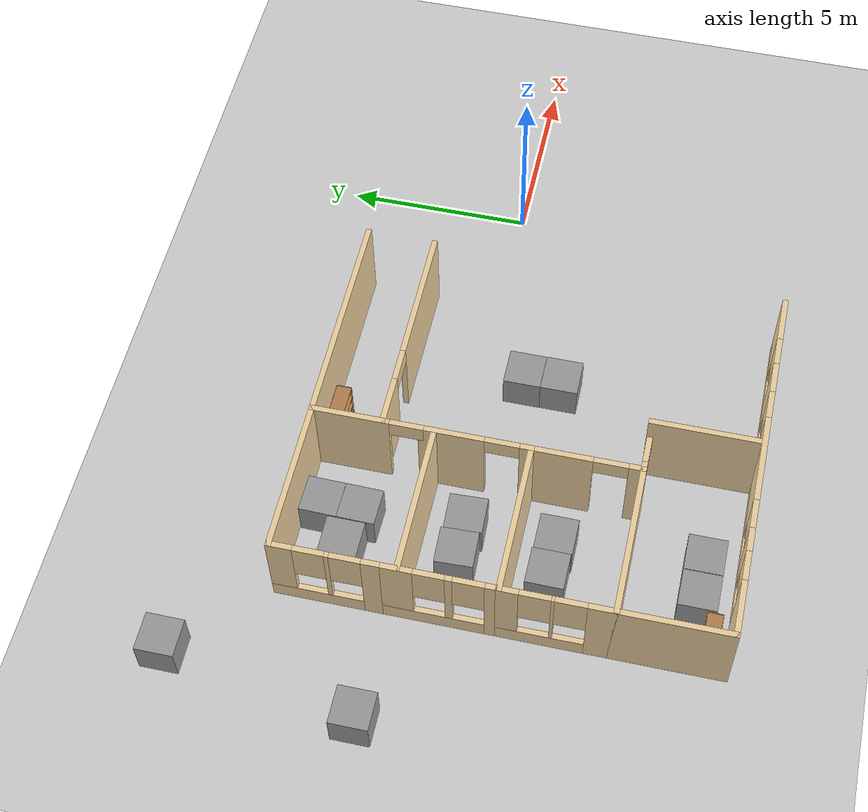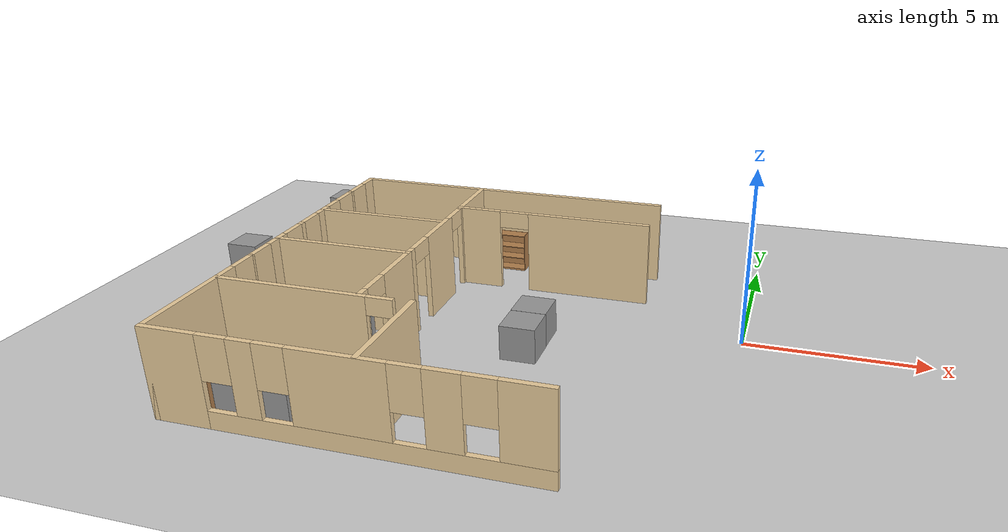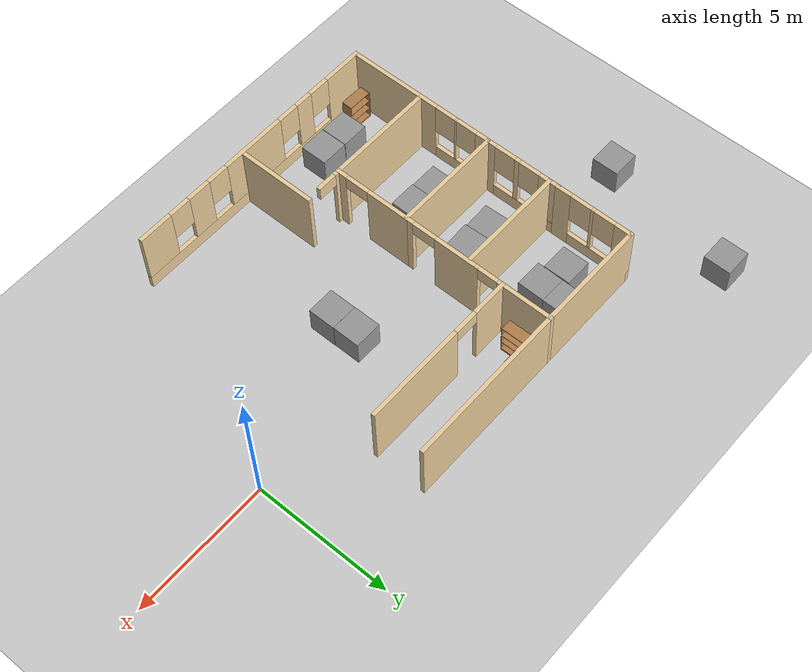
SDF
<sdf version="1.7">
 <world name="default">
  <model name="ground_plane">
   <static>1</static>
   <link name="link">
    <collision name="collision">
     <geometry><plane><normal>0 0 1</normal><size>100 100</size></plane></geometry>
     <surface>
      <contact><collide_bitmask>65535</collide_bitmask></contact>
      <friction><ode><mu>100</mu><mu2>50</mu2></ode></friction>
     </surface>
    </collision>
    <visual name="visual">
     <cast_shadows>0</cast_shadows>
     <geometry><plane><normal>0 0 1</normal><size>100 100</size></plane></geometry>
     <material>
      <script><uri>file://media/materials/scripts/gazebo.material</uri><name>Gazebo/Grey</name></script>
     </material>
    </visual>
   </link>
  </model>
  <model name="Health_2">
   <pose>1.45683 -1.97013 0 0 -0 0</pose>
   <link name="Wall_101">
    <pose>-10.4424 1.425 0 0 -0 -1.5708</pose>
    <visual name="Wall_101_Visual_0">
     <pose>-0.635885 0 1.25 0 -0 0</pose>
     <geometry><box><size>1.72823 0.15 2.5</size></box></geometry>
     <material>
      <script><uri>file://media/materials/scripts/gazebo.material</uri><name>Gazebo/Grey</name></script>
      <ambient>0.921569 0.807843 0.615686 1</ambient>
     </material>
     <meta><layer>0</layer></meta>
    </visual>
    <collision name="Wall_101_Collision_0">
     <geometry><box><size>1.72823 0.15 2.5</size></box></geometry>
     <pose>-0.635885 0 1.25 0 -0 0</pose>
    </collision>
    <visual name="Wall_101_Visual_1">
     <pose>1.31411 0 1.25 0 -0 0</pose>
     <geometry><box><size>0.371769 0.15 2.5</size></box></geometry>
     <material>
      <script><uri>file://media/materials/scripts/gazebo.material</uri><name>Gazebo/Grey</name></script>
      <ambient>0.921569 0.807843 0.615686 1</ambient>
     </material>
     <meta><layer>0</layer></meta>
    </visual>
    <collision name="Wall_101_Collision_1">
     <geometry><box><size>0.371769 0.15 2.5</size></box></geometry>
     <pose>1.31411 0 1.25 0 -0 0</pose>
    </collision>
    <visual name="Wall_101_Visual_2">
     <pose>0.678231 0 2.25 0 -0 0</pose>
     <geometry><box><size>0.9 0.15 0.5</size></box></geometry>
     <material>
      <script><uri>file://media/materials/scripts/gazebo.material</uri><name>Gazebo/Grey</name></script>
      <ambient>0.921569 0.807843 0.615686 1</ambient>
     </material>
     <meta><layer>0</layer></meta>
    </visual>
    <collision name="Wall_101_Collision_2">
     <geometry><box><size>0.9 0.15 0.5</size></box></geometry>
     <pose>0.678231 0 2.25 0 -0 0</pose>
    </collision>
   </link>
   <link name="Wall_103">
    <pose>-14.4424 4.275 0 0 -0 1.5708</pose>
    <visual name="Wall_103_Visual_0">
     <pose>-1.1898 0 1.25 0 -0 0</pose>
     <geometry><box><size>0.620394 0.15 2.5</size></box></geometry>
     <material>
      <script><uri>file://media/materials/scripts/gazebo.material</uri><name>Gazebo/Grey</name></script>
      <ambient>0.921569 0.807843 0.615686 1</ambient>
     </material>
     <meta><layer>0</layer></meta>
    </visual>
    <collision name="Wall_103_Collision_0">
     <geometry><box><size>0.620394 0.15 2.5</size></box></geometry>
     <pose>-1.1898 0 1.25 0 -0 0</pose>
    </collision>
    <visual name="Wall_103_Visual_1">
     <pose>0.310197 0 0.25 0 -0 0</pose>
     <geometry><box><size>2.37961 0.15 0.5</size></box></geometry>
     <material>
      <script><uri>file://media/materials/scripts/gazebo.material</uri><name>Gazebo/Grey</name></script>
      <ambient>0.921569 0.807843 0.615686 1</ambient>
     </material>
     <meta><layer>0</layer></meta>
    </visual>
    <collision name="Wall_103_Collision_1">
     <geometry><box><size>2.37961 0.15 0.5</size></box></geometry>
     <pose>0.310197 0 0.25 0 -0 0</pose>
    </collision>
    <visual name="Wall_103_Visual_2">
     <pose>-0.022282 0 1.5 0 -0 0</pose>
     <geometry><box><size>0.114648 0.15 2</size></box></geometry>
     <material>
      <script><uri>file://media/materials/scripts/gazebo.material</uri><name>Gazebo/Grey</name></script>
      <ambient>0.921569 0.807843 0.615686 1</ambient>
     </material>
     <meta><layer>0</layer></meta>
    </visual>
    <collision name="Wall_103_Collision_2">
     <geometry><box><size>0.114648 0.15 2</size></box></geometry>
     <pose>-0.022282 0 1.5 0 -0 0</pose>
    </collision>
    <visual name="Wall_103_Visual_3">
     <pose>1.16752 0 1.5 0 -0 0</pose>
     <geometry><box><size>0.664958 0.15 2</size></box></geometry>
     <material>
      <script><uri>file://media/materials/scripts/gazebo.material</uri><name>Gazebo/Grey</name></script>
      <ambient>0.921569 0.807843 0.615686 1</ambient>
     </material>
     <meta><layer>0</layer></meta>
    </visual>
    <collision name="Wall_103_Collision_3">
     <geometry><box><size>0.664958 0.15 2</size></box></geometry>
     <pose>1.16752 0 1.5 0 -0 0</pose>
    </collision>
    <visual name="Wall_103_Visual_4">
     <pose>-0.479606 0 1.9 0 -0 0</pose>
     <geometry><box><size>0.8 0.15 1.2</size></box></geometry>
     <material>
      <script><uri>file://media/materials/scripts/gazebo.material</uri><name>Gazebo/Grey</name></script>
      <ambient>0.921569 0.807843 0.615686 1</ambient>
     </material>
     <meta><layer>0</layer></meta>
    </visual>
    <collision name="Wall_103_Collision_4">
     <geometry><box><size>0.8 0.15 1.2</size></box></geometry>
     <pose>-0.479606 0 1.9 0 -0 0</pose>
    </collision>
    <visual name="Wall_103_Visual_5">
     <pose>0.435042 0 1.9 0 -0 0</pose>
     <geometry><box><size>0.8 0.15 1.2</size></box></geometry>
     <material>
      <script><uri>file://media/materials/scripts/gazebo.material</uri><name>Gazebo/Grey</name></script>
      <ambient>0.921569 0.807843 0.615686 1</ambient>
     </material>
     <meta><layer>0</layer></meta>
    </visual>
    <collision name="Wall_103_Collision_5">
     <geometry><box><size>0.8 0.15 1.2</size></box></geometry>
     <pose>0.435042 0 1.9 0 -0 0</pose>
    </collision>
   </link>
   <link name="Wall_104">
    <collision name="Wall_104_Collision">
     <geometry><box><size>4.15 0.15 2.5</size></box></geometry>
     <pose>0 0 1.25 0 -0 0</pose>
    </collision>
    <visual name="Wall_104_Visual">
     <pose>0 0 1.25 0 -0 0</pose>
     <geometry><box><size>4.15 0.15 2.5</size></box></geometry>
     <material>
      <script><uri>file://media/materials/scripts/gazebo.material</uri><name>Gazebo/Grey</name></script>
      <ambient>0.921569 0.807843 0.615686 1</ambient>
     </material>
     <meta><layer>0</layer></meta>
    </visual>
    <pose>-12.4424 5.7 0 0 -0 0</pose>
   </link>
   <link name="Wall_105">
    <pose>-10.4424 4.275 0 0 -0 -1.5708</pose>
    <visual name="Wall_105_Visual_0">
     <pose>-0.448372 0 1.25 0 -0 0</pose>
     <geometry><box><size>2.10326 0.15 2.5</size></box></geometry>
     <material>
      <script><uri>file://media/materials/scripts/gazebo.material</uri><name>Gazebo/Grey</name></script>
      <ambient>0.921569 0.807843 0.615686 1</ambient>
     </material>
     <meta><layer>0</layer></meta>
    </visual>
    <collision name="Wall_105_Collision_0">
     <geometry><box><size>2.10326 0.15 2.5</size></box></geometry>
     <pose>-0.448372 0 1.25 0 -0 0</pose>
    </collision>
    <visual name="Wall_105_Visual_1">
     <pose>1.05163 0 2.25 0 -0 0</pose>
     <geometry><box><size>0.896744 0.15 0.5</size></box></geometry>
     <material>
      <script><uri>file://media/materials/scripts/gazebo.material</uri><name>Gazebo/Grey</name></script>
      <ambient>0.921569 0.807843 0.615686 1</ambient>
     </material>
     <meta><layer>0</layer></meta>
    </visual>
    <collision name="Wall_105_Collision_1">
     <geometry><box><size>0.896744 0.15 0.5</size></box></geometry>
     <pose>1.05163 0 2.25 0 -0 0</pose>
    </collision>
   </link>
   <link name="Wall_107">
    <collision name="Wall_107_Collision">
     <geometry><box><size>6 0.15 2.5</size></box></geometry>
     <pose>0 0 1.25 0 -0 0</pose>
    </collision>
    <visual name="Wall_107_Visual">
     <pose>0 0 1.25 0 -0 0</pose>
     <geometry><box><size>6 0.15 2.5</size></box></geometry>
     <material>
      <script><uri>file://media/materials/scripts/gazebo.material</uri><name>Gazebo/Grey</name></script>
      <ambient>0.921569 0.807843 0.615686 1</ambient>
     </material>
     <meta><layer>0</layer></meta>
    </visual>
    <pose>-7.51736 5.7 0 0 -0 0</pose>
   </link>
   <link name="Wall_114">
    <pose>-10.4424 -1.425 0 0 -0 -1.5708</pose>
    <visual name="Wall_114_Visual_0">
     <pose>-0.673048 0 1.25 0 -0 0</pose>
     <geometry><box><size>1.6539 0.15 2.5</size></box></geometry>
     <material>
      <script><uri>file://media/materials/scripts/gazebo.material</uri><name>Gazebo/Grey</name></script>
      <ambient>0.921569 0.807843 0.615686 1</ambient>
     </material>
     <meta><layer>0</layer></meta>
    </visual>
    <collision name="Wall_114_Collision_0">
     <geometry><box><size>1.6539 0.15 2.5</size></box></geometry>
     <pose>-0.673048 0 1.25 0 -0 0</pose>
    </collision>
    <visual name="Wall_114_Visual_1">
     <pose>1.27695 0 1.25 0 -0 0</pose>
     <geometry><box><size>0.446096 0.15 2.5</size></box></geometry>
     <material>
      <script><uri>file://media/materials/scripts/gazebo.material</uri><name>Gazebo/Grey</name></script>
      <ambient>0.921569 0.807843 0.615686 1</ambient>
     </material>
     <meta><layer>0</layer></meta>
    </visual>
    <collision name="Wall_114_Collision_1">
     <geometry><box><size>0.446096 0.15 2.5</size></box></geometry>
     <pose>1.27695 0 1.25 0 -0 0</pose>
    </collision>
    <visual name="Wall_114_Visual_2">
     <pose>0.603904 0 2.25 0 -0 0</pose>
     <geometry><box><size>0.9 0.15 0.5</size></box></geometry>
     <material>
      <script><uri>file://media/materials/scripts/gazebo.material</uri><name>Gazebo/Grey</name></script>
      <ambient>0.921569 0.807843 0.615686 1</ambient>
     </material>
     <meta><layer>0</layer></meta>
    </visual>
    <collision name="Wall_114_Collision_2">
     <geometry><box><size>0.9 0.15 0.5</size></box></geometry>
     <pose>0.603904 0 2.25 0 -0 0</pose>
    </collision>
   </link>
   <link name="Wall_123">
    <pose>-7.51736 3.85 0 0 -0 3.14159</pose>
    <visual name="Wall_123_Visual_0">
     <pose>-1.14066 0 1.25 0 -0 0</pose>
     <geometry><box><size>3.71867 0.15 2.5</size></box></geometry>
     <material>
      <script><uri>file://media/materials/scripts/gazebo.material</uri><name>Gazebo/Grey</name></script>
      <ambient>0.921569 0.807843 0.615686 1</ambient>
     </material>
     <meta><layer>0</layer></meta>
    </visual>
    <collision name="Wall_123_Collision_0">
     <geometry><box><size>3.71867 0.15 2.5</size></box></geometry>
     <pose>-1.14066 0 1.25 0 -0 0</pose>
    </collision>
    <visual name="Wall_123_Visual_1">
     <pose>2.30934 0 1.25 0 -0 0</pose>
     <geometry><box><size>1.38133 0.15 2.5</size></box></geometry>
     <material>
      <script><uri>file://media/materials/scripts/gazebo.material</uri><name>Gazebo/Grey</name></script>
      <ambient>0.921569 0.807843 0.615686 1</ambient>
     </material>
     <meta><layer>0</layer></meta>
    </visual>
    <collision name="Wall_123_Collision_1">
     <geometry><box><size>1.38133 0.15 2.5</size></box></geometry>
     <pose>2.30934 0 1.25 0 -0 0</pose>
    </collision>
    <visual name="Wall_123_Visual_2">
     <pose>1.16867 0 2.25 0 -0 0</pose>
     <geometry><box><size>0.9 0.15 0.5</size></box></geometry>
     <material>
      <script><uri>file://media/materials/scripts/gazebo.material</uri><name>Gazebo/Grey</name></script>
      <ambient>0.921569 0.807843 0.615686 1</ambient>
     </material>
     <meta><layer>0</layer></meta>
    </visual>
    <collision name="Wall_123_Collision_2">
     <geometry><box><size>0.9 0.15 0.5</size></box></geometry>
     <pose>1.16867 0 2.25 0 -0 0</pose>
    </collision>
   </link>
   <link name="Wall_133">
    <collision name="Wall_133_Collision">
     <geometry><box><size>3 0.15 2.5</size></box></geometry>
     <pose>0 0 1.25 0 -0 0</pose>
    </collision>
    <visual name="Wall_133_Visual">
     <pose>0 0 1.25 0 -0 0</pose>
     <geometry><box><size>3 0.15 2.5</size></box></geometry>
     <material>
      <script><uri>file://media/materials/scripts/gazebo.material</uri><name>Gazebo/Grey</name></script>
      <ambient>0.921569 0.807843 0.615686 1</ambient>
     </material>
     <meta><layer>0</layer></meta>
    </visual>
    <pose>-14.4424 -4.275 0 0 -0 -1.5708</pose>
   </link>
   <link name="Wall_134">
    <pose>-9.5058 -5.7 0 0 -0 0</pose>
    <visual name="Wall_134_Visual_0">
     <pose>-4.24101 0 1.25 0 -0 0</pose>
     <geometry><box><size>1.54111 0.15 2.5</size></box></geometry>
     <material>
      <script><uri>file://media/materials/scripts/gazebo.material</uri><name>Gazebo/Grey</name></script>
      <ambient>0.921569 0.807843 0.615686 1</ambient>
     </material>
     <meta><layer>0</layer></meta>
    </visual>
    <collision name="Wall_134_Collision_0">
     <geometry><box><size>1.54111 0.15 2.5</size></box></geometry>
     <pose>-4.24101 0 1.25 0 -0 0</pose>
    </collision>
    <visual name="Wall_134_Visual_1">
     <pose>0.770556 0 0.25 0 -0 0</pose>
     <geometry><box><size>8.48202 0.15 0.5</size></box></geometry>
     <material>
      <script><uri>file://media/materials/scripts/gazebo.material</uri><name>Gazebo/Grey</name></script>
      <ambient>0.921569 0.807843 0.615686 1</ambient>
     </material>
     <meta><layer>0</layer></meta>
    </visual>
    <collision name="Wall_134_Collision_1">
     <geometry><box><size>8.48202 0.15 0.5</size></box></geometry>
     <pose>0.770556 0 0.25 0 -0 0</pose>
    </collision>
    <visual name="Wall_134_Visual_2">
     <pose>-2.34288 0 1.5 0 -0 0</pose>
     <geometry><box><size>0.655137 0.15 2</size></box></geometry>
     <material>
      <script><uri>file://media/materials/scripts/gazebo.material</uri><name>Gazebo/Grey</name></script>
      <ambient>0.921569 0.807843 0.615686 1</ambient>
     </material>
     <meta><layer>0</layer></meta>
    </visual>
    <collision name="Wall_134_Collision_2">
     <geometry><box><size>0.655137 0.15 2</size></box></geometry>
     <pose>-2.34288 0 1.5 0 -0 0</pose>
    </collision>
    <visual name="Wall_134_Visual_3">
     <pose>0.011093 0 1.5 0 -0 0</pose>
     <geometry><box><size>2.45282 0.15 2</size></box></geometry>
     <material>
      <script><uri>file://media/materials/scripts/gazebo.material</uri><name>Gazebo/Grey</name></script>
      <ambient>0.921569 0.807843 0.615686 1</ambient>
     </material>
     <meta><layer>0</layer></meta>
    </visual>
    <collision name="Wall_134_Collision_3">
     <geometry><box><size>2.45282 0.15 2</size></box></geometry>
     <pose>0.011093 0 1.5 0 -0 0</pose>
    </collision>
    <visual name="Wall_134_Visual_4">
     <pose>2.48179 0 1.5 0 -0 0</pose>
     <geometry><box><size>0.888581 0.15 2</size></box></geometry>
     <material>
      <script><uri>file://media/materials/scripts/gazebo.material</uri><name>Gazebo/Grey</name></script>
      <ambient>0.921569 0.807843 0.615686 1</ambient>
     </material>
     <meta><layer>0</layer></meta>
    </visual>
    <collision name="Wall_134_Collision_4">
     <geometry><box><size>0.888581 0.15 2</size></box></geometry>
     <pose>2.48179 0 1.5 0 -0 0</pose>
    </collision>
    <visual name="Wall_134_Visual_5">
     <pose>4.36882 0 1.5 0 -0 0</pose>
     <geometry><box><size>1.28548 0.15 2</size></box></geometry>
     <material>
      <script><uri>file://media/materials/scripts/gazebo.material</uri><name>Gazebo/Grey</name></script>
      <ambient>0.921569 0.807843 0.615686 1</ambient>
     </material>
     <meta><layer>0</layer></meta>
    </visual>
    <collision name="Wall_134_Collision_5">
     <geometry><box><size>1.28548 0.15 2</size></box></geometry>
     <pose>4.36882 0 1.5 0 -0 0</pose>
    </collision>
    <visual name="Wall_134_Visual_6">
     <pose>-3.07045 0 1.9 0 -0 0</pose>
     <geometry><box><size>0.8 0.15 1.2</size></box></geometry>
     <material>
      <script><uri>file://media/materials/scripts/gazebo.material</uri><name>Gazebo/Grey</name></script>
      <ambient>0.921569 0.807843 0.615686 1</ambient>
     </material>
     <meta><layer>0</layer></meta>
    </visual>
    <collision name="Wall_134_Collision_6">
     <geometry><box><size>0.8 0.15 1.2</size></box></geometry>
     <pose>-3.07045 0 1.9 0 -0 0</pose>
    </collision>
    <visual name="Wall_134_Visual_7">
     <pose>-1.61532 0 1.9 0 -0 0</pose>
     <geometry><box><size>0.8 0.15 1.2</size></box></geometry>
     <material>
      <script><uri>file://media/materials/scripts/gazebo.material</uri><name>Gazebo/Grey</name></script>
      <ambient>0.921569 0.807843 0.615686 1</ambient>
     </material>
     <meta><layer>0</layer></meta>
    </visual>
    <collision name="Wall_134_Collision_7">
     <geometry><box><size>0.8 0.15 1.2</size></box></geometry>
     <pose>-1.61532 0 1.9 0 -0 0</pose>
    </collision>
    <visual name="Wall_134_Visual_8">
     <pose>1.6375 0 1.9 0 -0 0</pose>
     <geometry><box><size>0.8 0.15 1.2</size></box></geometry>
     <material>
      <script><uri>file://media/materials/scripts/gazebo.material</uri><name>Gazebo/Grey</name></script>
      <ambient>0.921569 0.807843 0.615686 1</ambient>
     </material>
     <meta><layer>0</layer></meta>
    </visual>
    <collision name="Wall_134_Collision_8">
     <geometry><box><size>0.8 0.15 1.2</size></box></geometry>
     <pose>1.6375 0 1.9 0 -0 0</pose>
    </collision>
    <visual name="Wall_134_Visual_9">
     <pose>3.32608 0 1.9 0 -0 0</pose>
     <geometry><box><size>0.8 0.15 1.2</size></box></geometry>
     <material>
      <script><uri>file://media/materials/scripts/gazebo.material</uri><name>Gazebo/Grey</name></script>
      <ambient>0.921569 0.807843 0.615686 1</ambient>
     </material>
     <meta><layer>0</layer></meta>
    </visual>
    <collision name="Wall_134_Collision_9">
     <geometry><box><size>0.8 0.15 1.2</size></box></geometry>
     <pose>3.32608 0 1.9 0 -0 0</pose>
    </collision>
   </link>
   <link name="Wall_226">
    <collision name="Wall_226_Collision">
     <geometry><box><size>4 0.15 2.5</size></box></geometry>
     <pose>0 0 1.25 0 -0 0</pose>
    </collision>
    <visual name="Wall_226_Visual">
     <pose>0 0 1.25 0 -0 0</pose>
     <geometry><box><size>4 0.15 2.5</size></box></geometry>
     <material>
      <script><uri>file://media/materials/scripts/gazebo.material</uri><name>Gazebo/Grey</name></script>
      <ambient>0.921569 0.807843 0.615686 1</ambient>
     </material>
     <meta><layer>0</layer></meta>
    </visual>
    <pose>-12.4974 2.50469 0 0 -0 0</pose>
   </link>
   <link name="Wall_228">
    <collision name="Wall_228_Collision">
     <geometry><box><size>3 0.15 2.5</size></box></geometry>
     <pose>0 0 1.25 0 -0 0</pose>
    </collision>
    <visual name="Wall_228_Visual">
     <pose>0 0 1.25 0 -0 0</pose>
     <geometry><box><size>3 0.15 2.5</size></box></geometry>
     <material>
      <script><uri>file://media/materials/scripts/gazebo.material</uri><name>Gazebo/Grey</name></script>
      <ambient>0.921569 0.807843 0.615686 1</ambient>
     </material>
     <meta><layer>0</layer></meta>
    </visual>
    <pose>-9.01472 -4.24424 0 0 -0 -1.5708</pose>
   </link>
   <link name="Wall_28">
    <pose>-11.9942 -2.85 0 0 -0 0</pose>
    <visual name="Wall_28_Visual_0">
     <pose>-0.366901 0 1.25 0 -0 0</pose>
     <geometry><box><size>4.2662 0.15 2.5</size></box></geometry>
     <material>
      <script><uri>file://media/materials/scripts/gazebo.material</uri><name>Gazebo/Grey</name></script>
      <ambient>0.921569 0.807843 0.615686 1</ambient>
     </material>
     <meta><layer>0</layer></meta>
    </visual>
    <collision name="Wall_28_Collision_0">
     <geometry><box><size>4.2662 0.15 2.5</size></box></geometry>
     <pose>-0.366901 0 1.25 0 -0 0</pose>
    </collision>
    <visual name="Wall_28_Visual_1">
     <pose>2.1331 0 2.25 0 -0 0</pose>
     <geometry><box><size>0.733801 0.15 0.5</size></box></geometry>
     <material>
      <script><uri>file://media/materials/scripts/gazebo.material</uri><name>Gazebo/Grey</name></script>
      <ambient>0.921569 0.807843 0.615686 1</ambient>
     </material>
     <meta><layer>0</layer></meta>
    </visual>
    <collision name="Wall_28_Collision_1">
     <geometry><box><size>0.733801 0.15 0.5</size></box></geometry>
     <pose>2.1331 0 2.25 0 -0 0</pose>
    </collision>
   </link>
   <link name="Wall_48">
    <pose>-14.4424 -1.425 0 0 -0 1.5708</pose>
    <visual name="Wall_48_Visual_0">
     <pose>-1.11892 0 1.25 0 -0 0</pose>
     <geometry><box><size>0.76215 0.15 2.5</size></box></geometry>
     <material>
      <script><uri>file://media/materials/scripts/gazebo.material</uri><name>Gazebo/Grey</name></script>
      <ambient>0.921569 0.807843 0.615686 1</ambient>
     </material>
     <meta><layer>0</layer></meta>
    </visual>
    <collision name="Wall_48_Collision_0">
     <geometry><box><size>0.76215 0.15 2.5</size></box></geometry>
     <pose>-1.11892 0 1.25 0 -0 0</pose>
    </collision>
    <visual name="Wall_48_Visual_1">
     <pose>0.381075 0 0.25 0 -0 0</pose>
     <geometry><box><size>2.23785 0.15 0.5</size></box></geometry>
     <material>
      <script><uri>file://media/materials/scripts/gazebo.material</uri><name>Gazebo/Grey</name></script>
      <ambient>0.921569 0.807843 0.615686 1</ambient>
     </material>
     <meta><layer>0</layer></meta>
    </visual>
    <collision name="Wall_48_Collision_1">
     <geometry><box><size>2.23785 0.15 0.5</size></box></geometry>
     <pose>0.381075 0 0.25 0 -0 0</pose>
    </collision>
    <visual name="Wall_48_Visual_2">
     <pose>0.101884 0 1.5 0 -0 0</pose>
     <geometry><box><size>0.079469 0.15 2</size></box></geometry>
     <material>
      <script><uri>file://media/materials/scripts/gazebo.material</uri><name>Gazebo/Grey</name></script>
      <ambient>0.921569 0.807843 0.615686 1</ambient>
     </material>
     <meta><layer>0</layer></meta>
    </visual>
    <collision name="Wall_48_Collision_2">
     <geometry><box><size>0.079469 0.15 2</size></box></geometry>
     <pose>0.101884 0 1.5 0 -0 0</pose>
    </collision>
    <visual name="Wall_48_Visual_3">
     <pose>1.22081 0 1.5 0 -0 0</pose>
     <geometry><box><size>0.558381 0.15 2</size></box></geometry>
     <material>
      <script><uri>file://media/materials/scripts/gazebo.material</uri><name>Gazebo/Grey</name></script>
      <ambient>0.921569 0.807843 0.615686 1</ambient>
     </material>
     <meta><layer>0</layer></meta>
    </visual>
    <collision name="Wall_48_Collision_3">
     <geometry><box><size>0.558381 0.15 2</size></box></geometry>
     <pose>1.22081 0 1.5 0 -0 0</pose>
    </collision>
    <visual name="Wall_48_Visual_4">
     <pose>-0.33785 0 1.9 0 -0 0</pose>
     <geometry><box><size>0.8 0.15 1.2</size></box></geometry>
     <material>
      <script><uri>file://media/materials/scripts/gazebo.material</uri><name>Gazebo/Grey</name></script>
      <ambient>0.921569 0.807843 0.615686 1</ambient>
     </material>
     <meta><layer>0</layer></meta>
    </visual>
    <collision name="Wall_48_Collision_4">
     <geometry><box><size>0.8 0.15 1.2</size></box></geometry>
     <pose>-0.33785 0 1.9 0 -0 0</pose>
    </collision>
    <visual name="Wall_48_Visual_5">
     <pose>0.541619 0 1.9 0 -0 0</pose>
     <geometry><box><size>0.8 0.15 1.2</size></box></geometry>
     <material>
      <script><uri>file://media/materials/scripts/gazebo.material</uri><name>Gazebo/Grey</name></script>
      <ambient>0.921569 0.807843 0.615686 1</ambient>
     </material>
     <meta><layer>0</layer></meta>
    </visual>
    <collision name="Wall_48_Collision_5">
     <geometry><box><size>0.8 0.15 1.2</size></box></geometry>
     <pose>0.541619 0 1.9 0 -0 0</pose>
    </collision>
   </link>
   <link name="Wall_94">
    <collision name="Wall_94_Collision">
     <geometry><box><size>4.15 0.15 2.5</size></box></geometry>
     <pose>0 0 1.25 0 -0 0</pose>
    </collision>
    <visual name="Wall_94_Visual">
     <pose>0 0 1.25 0 -0 0</pose>
     <geometry><box><size>4.15 0.15 2.5</size></box></geometry>
     <material>
      <script><uri>file://media/materials/scripts/gazebo.material</uri><name>Gazebo/Grey</name></script>
      <ambient>0.921569 0.807843 0.615686 1</ambient>
     </material>
     <meta><layer>0</layer></meta>
    </visual>
    <pose>-12.4424 -0 0 0 -0 0</pose>
   </link>
   <link name="Wall_99">
    <pose>-14.4424 1.425 0 0 -0 1.5708</pose>
    <visual name="Wall_99_Visual_0">
     <pose>-1.29508 0 1.25 0 -0 0</pose>
     <geometry><box><size>0.409842 0.15 2.5</size></box></geometry>
     <material>
      <script><uri>file://media/materials/scripts/gazebo.material</uri><name>Gazebo/Grey</name></script>
      <ambient>0.921569 0.807843 0.615686 1</ambient>
     </material>
     <meta><layer>0</layer></meta>
    </visual>
    <collision name="Wall_99_Collision_0">
     <geometry><box><size>0.409842 0.15 2.5</size></box></geometry>
     <pose>-1.29508 0 1.25 0 -0 0</pose>
    </collision>
    <visual name="Wall_99_Visual_1">
     <pose>0.204921 0 0.25 0 -0 0</pose>
     <geometry><box><size>2.59016 0.15 0.5</size></box></geometry>
     <material>
      <script><uri>file://media/materials/scripts/gazebo.material</uri><name>Gazebo/Grey</name></script>
      <ambient>0.921569 0.807843 0.615686 1</ambient>
     </material>
     <meta><layer>0</layer></meta>
    </visual>
    <collision name="Wall_99_Collision_1">
     <geometry><box><size>2.59016 0.15 0.5</size></box></geometry>
     <pose>0.204921 0 0.25 0 -0 0</pose>
    </collision>
    <visual name="Wall_99_Visual_2">
     <pose>-0.197655 0 1.5 0 -0 0</pose>
     <geometry><box><size>0.185005 0.15 2</size></box></geometry>
     <material>
      <script><uri>file://media/materials/scripts/gazebo.material</uri><name>Gazebo/Grey</name></script>
      <ambient>0.921569 0.807843 0.615686 1</ambient>
     </material>
     <meta><layer>0</layer></meta>
    </visual>
    <collision name="Wall_99_Collision_2">
     <geometry><box><size>0.185005 0.15 2</size></box></geometry>
     <pose>-0.197655 0 1.5 0 -0 0</pose>
    </collision>
    <visual name="Wall_99_Visual_3">
     <pose>1.09742 0 1.5 0 -0 0</pose>
     <geometry><box><size>0.805153 0.15 2</size></box></geometry>
     <material>
      <script><uri>file://media/materials/scripts/gazebo.material</uri><name>Gazebo/Grey</name></script>
      <ambient>0.921569 0.807843 0.615686 1</ambient>
     </material>
     <meta><layer>0</layer></meta>
    </visual>
    <collision name="Wall_99_Collision_3">
     <geometry><box><size>0.805153 0.15 2</size></box></geometry>
     <pose>1.09742 0 1.5 0 -0 0</pose>
    </collision>
    <visual name="Wall_99_Visual_4">
     <pose>-0.690158 0 1.9 0 -0 0</pose>
     <geometry><box><size>0.8 0.15 1.2</size></box></geometry>
     <material>
      <script><uri>file://media/materials/scripts/gazebo.material</uri><name>Gazebo/Grey</name></script>
      <ambient>0.921569 0.807843 0.615686 1</ambient>
     </material>
     <meta><layer>0</layer></meta>
    </visual>
    <collision name="Wall_99_Collision_4">
     <geometry><box><size>0.8 0.15 1.2</size></box></geometry>
     <pose>-0.690158 0 1.9 0 -0 0</pose>
    </collision>
    <visual name="Wall_99_Visual_5">
     <pose>0.294847 0 1.9 0 -0 0</pose>
     <geometry><box><size>0.8 0.15 1.2</size></box></geometry>
     <material>
      <script><uri>file://media/materials/scripts/gazebo.material</uri><name>Gazebo/Grey</name></script>
      <ambient>0.921569 0.807843 0.615686 1</ambient>
     </material>
     <meta><layer>0</layer></meta>
    </visual>
    <collision name="Wall_99_Collision_5">
     <geometry><box><size>0.8 0.15 1.2</size></box></geometry>
     <pose>0.294847 0 1.9 0 -0 0</pose>
    </collision>
   </link>
   <static>1</static>
  </model>
  <model name="bookshelf_1">
   <static>1</static>
   <link name="link">
    <inertial><mass>1</mass></inertial>
    <collision name="back">
     <pose>0 0.005 0.6 0 -0 0</pose>
     <geometry><box><size>0.9 0.01 1.2</size></box></geometry>
    </collision>
    <visual name="visual1">
     <pose>0 0.005 0.6 0 -0 0</pose>
     <geometry><box><size>0.9 0.01 1.2</size></box></geometry>
     <material>
      <script><uri>file://media/materials/scripts/gazebo.material</uri><name>Gazebo/Wood</name></script>
     </material>
    </visual>
    <collision name="left_side">
     <pose>0.45 -0.195 0.6 0 -0 0</pose>
     <geometry><box><size>0.02 0.4 1.2</size></box></geometry>
    </collision>
    <visual name="visual2">
     <pose>0.45 -0.195 0.6 0 -0 0</pose>
     <geometry><box><size>0.02 0.4 1.2</size></box></geometry>
     <material>
      <script><uri>file://media/materials/scripts/gazebo.material</uri><name>Gazebo/Wood</name></script>
     </material>
    </visual>
    <collision name="right_side">
     <pose>-0.45 -0.195 0.6 0 -0 0</pose>
     <geometry><box><size>0.02 0.4 1.2</size></box></geometry>
    </collision>
    <visual name="visual3">
     <pose>-0.45 -0.195 0.6 0 -0 0</pose>
     <geometry><box><size>0.02 0.4 1.2</size></box></geometry>
     <material>
      <script><uri>file://media/materials/scripts/gazebo.material</uri><name>Gazebo/Wood</name></script>
     </material>
    </visual>
    <collision name="bottom">
     <pose>0 -0.195 0.03 0 -0 0</pose>
     <geometry><box><size>0.88 0.4 0.06</size></box></geometry>
    </collision>
    <visual name="visual4">
     <pose>0 -0.195 0.03 0 -0 0</pose>
     <geometry><box><size>0.88 0.4 0.06</size></box></geometry>
     <material>
      <script><uri>file://media/materials/scripts/gazebo.material</uri><name>Gazebo/Wood</name></script>
     </material>
    </visual>
    <collision name="top">
     <pose>0 -0.195 1.19 0 -0 0</pose>
     <geometry><box><size>0.88 0.4 0.02</size></box></geometry>
    </collision>
    <visual name="visual5">
     <pose>0 -0.195 1.19 0 -0 0</pose>
     <geometry><box><size>0.88 0.4 0.02</size></box></geometry>
     <material>
      <script><uri>file://media/materials/scripts/gazebo.material</uri><name>Gazebo/Wood</name></script>
     </material>
    </visual>
    <collision name="low_shelf">
     <pose>0 -0.195 0.43 0 -0 0</pose>
     <geometry><box><size>0.88 0.4 0.02</size></box></geometry>
    </collision>
    <visual name="visual6">
     <pose>0 -0.195 0.43 0 -0 0</pose>
     <geometry><box><size>0.88 0.4 0.02</size></box></geometry>
     <material>
      <script><uri>file://media/materials/scripts/gazebo.material</uri><name>Gazebo/Wood</name></script>
     </material>
    </visual>
    <collision name="high_shelf">
     <pose>0 -0.195 0.8 0 -0 0</pose>
     <geometry><box><size>0.88 0.4 0.02</size></box></geometry>
    </collision>
    <visual name="visual7">
     <pose>0 -0.195 0.8 0 -0 0</pose>
     <geometry><box><size>0.88 0.4 0.02</size></box></geometry>
     <material>
      <script><uri>file://media/materials/scripts/gazebo.material</uri><name>Gazebo/Wood</name></script>
     </material>
    </visual>
   </link>
   <pose>-7.8279 3.57523 0 0 -0 0</pose>
  </model>
  <model name="bookshelf_4">
   <static>1</static>
   <link name="link">
    <inertial><mass>1</mass></inertial>
    <collision name="back">
     <pose>0 0.005 0.6 0 -0 0</pose>
     <geometry><box><size>0.9 0.01 1.2</size></box></geometry>
    </collision>
    <visual name="visual1">
     <pose>0 0.005 0.6 0 -0 0</pose>
     <geometry><box><size>0.9 0.01 1.2</size></box></geometry>
     <material>
      <script><uri>file://media/materials/scripts/gazebo.material</uri><name>Gazebo/Wood</name></script>
     </material>
    </visual>
    <collision name="left_side">
     <pose>0.45 -0.195 0.6 0 -0 0</pose>
     <geometry><box><size>0.02 0.4 1.2</size></box></geometry>
    </collision>
    <visual name="visual2">
     <pose>0.45 -0.195 0.6 0 -0 0</pose>
     <geometry><box><size>0.02 0.4 1.2</size></box></geometry>
     <material>
      <script><uri>file://media/materials/scripts/gazebo.material</uri><name>Gazebo/Wood</name></script>
     </material>
    </visual>
    <collision name="right_side">
     <pose>-0.45 -0.195 0.6 0 -0 0</pose>
     <geometry><box><size>0.02 0.4 1.2</size></box></geometry>
    </collision>
    <visual name="visual3">
     <pose>-0.45 -0.195 0.6 0 -0 0</pose>
     <geometry><box><size>0.02 0.4 1.2</size></box></geometry>
     <material>
      <script><uri>file://media/materials/scripts/gazebo.material</uri><name>Gazebo/Wood</name></script>
     </material>
    </visual>
    <collision name="bottom">
     <pose>0 -0.195 0.03 0 -0 0</pose>
     <geometry><box><size>0.88 0.4 0.06</size></box></geometry>
    </collision>
    <visual name="visual4">
     <pose>0 -0.195 0.03 0 -0 0</pose>
     <geometry><box><size>0.88 0.4 0.06</size></box></geometry>
     <material>
      <script><uri>file://media/materials/scripts/gazebo.material</uri><name>Gazebo/Wood</name></script>
     </material>
    </visual>
    <collision name="top">
     <pose>0 -0.195 1.19 0 -0 0</pose>
     <geometry><box><size>0.88 0.4 0.02</size></box></geometry>
    </collision>
    <visual name="visual5">
     <pose>0 -0.195 1.19 0 -0 0</pose>
     <geometry><box><size>0.88 0.4 0.02</size></box></geometry>
     <material>
      <script><uri>file://media/materials/scripts/gazebo.material</uri><name>Gazebo/Wood</name></script>
     </material>
    </visual>
    <collision name="low_shelf">
     <pose>0 -0.195 0.43 0 -0 0</pose>
     <geometry><box><size>0.88 0.4 0.02</size></box></geometry>
    </collision>
    <visual name="visual6">
     <pose>0 -0.195 0.43 0 -0 0</pose>
     <geometry><box><size>0.88 0.4 0.02</size></box></geometry>
     <material>
      <script><uri>file://media/materials/scripts/gazebo.material</uri><name>Gazebo/Wood</name></script>
     </material>
    </visual>
    <collision name="high_shelf">
     <pose>0 -0.195 0.8 0 -0 0</pose>
     <geometry><box><size>0.88 0.4 0.02</size></box></geometry>
    </collision>
    <visual name="visual7">
     <pose>0 -0.195 0.8 0 -0 0</pose>
     <geometry><box><size>0.88 0.4 0.02</size></box></geometry>
     <material>
      <script><uri>file://media/materials/scripts/gazebo.material</uri><name>Gazebo/Wood</name></script>
     </material>
    </visual>
   </link>
   <pose>-8.79315 2.81602 0 0 -0 1.58</pose>
  </model>
  <model name="bookshelf_5">
   <static>1</static>
   <link name="link">
    <inertial><mass>1</mass></inertial>
    <collision name="back">
     <pose>0 0.005 0.6 0 -0 0</pose>
     <geometry><box><size>0.9 0.01 1.2</size></box></geometry>
    </collision>
    <visual name="visual1">
     <pose>0 0.005 0.6 0 -0 0</pose>
     <geometry><box><size>0.9 0.01 1.2</size></box></geometry>
     <material>
      <script><uri>file://media/materials/scripts/gazebo.material</uri><name>Gazebo/Wood</name></script>
     </material>
    </visual>
    <collision name="left_side">
     <pose>0.45 -0.195 0.6 0 -0 0</pose>
     <geometry><box><size>0.02 0.4 1.2</size></box></geometry>
    </collision>
    <visual name="visual2">
     <pose>0.45 -0.195 0.6 0 -0 0</pose>
     <geometry><box><size>0.02 0.4 1.2</size></box></geometry>
     <material>
      <script><uri>file://media/materials/scripts/gazebo.material</uri><name>Gazebo/Wood</name></script>
     </material>
    </visual>
    <collision name="right_side">
     <pose>-0.45 -0.195 0.6 0 -0 0</pose>
     <geometry><box><size>0.02 0.4 1.2</size></box></geometry>
    </collision>
    <visual name="visual3">
     <pose>-0.45 -0.195 0.6 0 -0 0</pose>
     <geometry><box><size>0.02 0.4 1.2</size></box></geometry>
     <material>
      <script><uri>file://media/materials/scripts/gazebo.material</uri><name>Gazebo/Wood</name></script>
     </material>
    </visual>
    <collision name="bottom">
     <pose>0 -0.195 0.03 0 -0 0</pose>
     <geometry><box><size>0.88 0.4 0.06</size></box></geometry>
    </collision>
    <visual name="visual4">
     <pose>0 -0.195 0.03 0 -0 0</pose>
     <geometry><box><size>0.88 0.4 0.06</size></box></geometry>
     <material>
      <script><uri>file://media/materials/scripts/gazebo.material</uri><name>Gazebo/Wood</name></script>
     </material>
    </visual>
    <collision name="top">
     <pose>0 -0.195 1.19 0 -0 0</pose>
     <geometry><box><size>0.88 0.4 0.02</size></box></geometry>
    </collision>
    <visual name="visual5">
     <pose>0 -0.195 1.19 0 -0 0</pose>
     <geometry><box><size>0.88 0.4 0.02</size></box></geometry>
     <material>
      <script><uri>file://media/materials/scripts/gazebo.material</uri><name>Gazebo/Wood</name></script>
     </material>
    </visual>
    <collision name="low_shelf">
     <pose>0 -0.195 0.43 0 -0 0</pose>
     <geometry><box><size>0.88 0.4 0.02</size></box></geometry>
    </collision>
    <visual name="visual6">
     <pose>0 -0.195 0.43 0 -0 0</pose>
     <geometry><box><size>0.88 0.4 0.02</size></box></geometry>
     <material>
      <script><uri>file://media/materials/scripts/gazebo.material</uri><name>Gazebo/Wood</name></script>
     </material>
    </visual>
    <collision name="high_shelf">
     <pose>0 -0.195 0.8 0 -0 0</pose>
     <geometry><box><size>0.88 0.4 0.02</size></box></geometry>
    </collision>
    <visual name="visual7">
     <pose>0 -0.195 0.8 0 -0 0</pose>
     <geometry><box><size>0.88 0.4 0.02</size></box></geometry>
     <material>
      <script><uri>file://media/materials/scripts/gazebo.material</uri><name>Gazebo/Wood</name></script>
     </material>
    </visual>
   </link>
   <pose>-12.3354 -7.36066 0 0 -0 3.12615</pose>
  </model>
  <model name="unit_box_3">
   <pose>-5.66524 -1.18101 0.5 0 -0 -0.001845</pose>
   <link name="link">
    <inertial>
     <mass>1</mass>
     <inertia>
      <ixx>0.166667</ixx>
      <ixy>0</ixy>
      <ixz>0</ixz>
      <iyy>0.166667</iyy>
      <iyz>0</iyz>
      <izz>0.166667</izz>
     </inertia>
    </inertial>
    <collision name="collision"><geometry><box><size>1 1 1</size></box></geometry></collision>
    <visual name="visual">
     <geometry><box><size>1 1 1</size></box></geometry>
     <material>
      <script><name>Gazebo/Grey</name><uri>file://media/materials/scripts/gazebo.material</uri></script>
     </material>
    </visual>
   </link>
  </model>
  <model name="unit_box_7">
   <pose>-11.6589 2.35034 0.5 0 -0 0.001561</pose>
   <link name="link">
    <inertial>
     <mass>1</mass>
     <inertia>
      <ixx>0.166667</ixx>
      <ixy>0</ixy>
      <ixz>0</ixz>
      <iyy>0.166667</iyy>
      <iyz>0</iyz>
      <izz>0.166667</izz>
     </inertia>
    </inertial>
    <collision name="collision"><geometry><box><size>1 1 1</size></box></geometry></collision>
    <visual name="visual">
     <geometry><box><size>1 1 1</size></box></geometry>
     <material>
      <script><name>Gazebo/Grey</name><uri>file://media/materials/scripts/gazebo.material</uri></script>
     </material>
    </visual>
   </link>
  </model>
  <model name="unit_box_8">
   <pose>-10.6241 3.12377 0.5 0 0 -0.018452</pose>
   <link name="link">
    <inertial>
     <mass>1</mass>
     <inertia>
      <ixx>0.166667</ixx>
      <ixy>0</ixy>
      <ixz>0</ixz>
      <iyy>0.166667</iyy>
      <iyz>0</iyz>
      <izz>0.166667</izz>
     </inertia>
    </inertial>
    <collision name="collision"><geometry><box><size>1 1 1</size></box></geometry></collision>
    <visual name="visual">
     <geometry><box><size>1 1 1</size></box></geometry>
     <material>
      <script><name>Gazebo/Grey</name><uri>file://media/materials/scripts/gazebo.material</uri></script>
     </material>
    </visual>
   </link>
  </model>
  <model name="unit_box_9">
   <pose>-10.6395 2.12322 0.5 0 -0 -0.019755</pose>
   <link name="link">
    <inertial>
     <mass>1</mass>
     <inertia>
      <ixx>0.166667</ixx>
      <ixy>0</ixy>
      <ixz>0</ixz>
      <iyy>0.166667</iyy>
      <iyz>0</iyz>
      <izz>0.166667</izz>
     </inertia>
    </inertial>
    <collision name="collision"><geometry><box><size>1 1 1</size></box></geometry></collision>
    <visual name="visual">
     <geometry><box><size>1 1 1</size></box></geometry>
     <material>
      <script><name>Gazebo/Grey</name><uri>file://media/materials/scripts/gazebo.material</uri></script>
     </material>
    </visual>
   </link>
  </model>
  <model name="unit_box_11">
   <pose>-10.3298 -0.576533 0.5 0 -0 0.038345</pose>
   <link name="link">
    <inertial>
     <mass>1</mass>
     <inertia>
      <ixx>0.166667</ixx>
      <ixy>0</ixy>
      <ixz>0</ixz>
      <iyy>0.166667</iyy>
      <iyz>0</iyz>
      <izz>0.166667</izz>
     </inertia>
    </inertial>
    <collision name="collision"><geometry><box><size>1 1 1</size></box></geometry></collision>
    <visual name="visual">
     <geometry><box><size>1 1 1</size></box></geometry>
     <material>
      <script><name>Gazebo/Grey</name><uri>file://media/materials/scripts/gazebo.material</uri></script>
     </material>
    </visual>
   </link>
  </model>
  <model name="unit_box_10">
   <pose>-11.3314 -0.555935 0.5 0 -0 0.038297</pose>
   <link name="link">
    <inertial>
     <mass>1</mass>
     <inertia>
      <ixx>0.166667</ixx>
      <ixy>0</ixy>
      <ixz>0</ixz>
      <iyy>0.166667</iyy>
      <iyz>0</iyz>
      <izz>0.166667</izz>
     </inertia>
    </inertial>
    <collision name="collision"><geometry><box><size>1 1 1</size></box></geometry></collision>
    <visual name="visual">
     <geometry><box><size>1 1 1</size></box></geometry>
     <material>
      <script><name>Gazebo/Grey</name><uri>file://media/materials/scripts/gazebo.material</uri></script>
     </material>
    </visual>
   </link>
  </model>
  <model name="unit_box_12">
   <pose>-16.06 0.915765 0.5 0 -0 0</pose>
   <link name="link">
    <inertial>
     <mass>1</mass>
     <inertia>
      <ixx>0.166667</ixx>
      <ixy>0</ixy>
      <ixz>0</ixz>
      <iyy>0.166667</iyy>
      <iyz>0</iyz>
      <izz>0.166667</izz>
     </inertia>
    </inertial>
    <collision name="collision"><geometry><box><size>1 1 1</size></box></geometry></collision>
    <visual name="visual">
     <geometry><box><size>1 1 1</size></box></geometry>
     <material>
      <script><name>Gazebo/Grey</name><uri>file://media/materials/scripts/gazebo.material</uri></script>
     </material>
    </visual>
   </link>
  </model>
  <model name="unit_box_13">
   <pose>-10.4273 -2.94329 0.5 0 0 -0.005537</pose>
   <link name="link">
    <inertial>
     <mass>1</mass>
     <inertia>
      <ixx>0.166667</ixx>
      <ixy>0</ixy>
      <ixz>0</ixz>
      <iyy>0.166667</iyy>
      <iyz>0</iyz>
      <izz>0.166667</izz>
     </inertia>
    </inertial>
    <collision name="collision"><geometry><box><size>1 1 1</size></box></geometry></collision>
    <visual name="visual">
     <geometry><box><size>1 1 1</size></box></geometry>
     <material>
      <script><name>Gazebo/Grey</name><uri>file://media/materials/scripts/gazebo.material</uri></script>
     </material>
    </visual>
   </link>
  </model>
  <model name="unit_box_14">
   <pose>-11.4271 -2.90946 0.5 0 -0 -0.005537</pose>
   <link name="link">
    <inertial>
     <mass>1</mass>
     <inertia>
      <ixx>0.166667</ixx>
      <ixy>0</ixy>
      <ixz>0</ixz>
      <iyy>0.166667</iyy>
      <iyz>0</iyz>
      <izz>0.166667</izz>
     </inertia>
    </inertial>
    <collision name="collision"><geometry><box><size>1 1 1</size></box></geometry></collision>
    <visual name="visual">
     <geometry><box><size>1 1 1</size></box></geometry>
     <material>
      <script><name>Gazebo/Grey</name><uri>file://media/materials/scripts/gazebo.material</uri></script>
     </material>
    </visual>
   </link>
  </model>
  <model name="unit_box_15">
   <pose>-15.2158 5.99425 0.5 0 -0 0</pose>
   <link name="link">
    <inertial>
     <mass>1</mass>
     <inertia>
      <ixx>0.166667</ixx>
      <ixy>0</ixy>
      <ixz>0</ixz>
      <iyy>0.166667</iyy>
      <iyz>0</iyz>
      <izz>0.166667</izz>
     </inertia>
    </inertial>
    <collision name="collision"><geometry><box><size>1 1 1</size></box></geometry></collision>
    <visual name="visual">
     <geometry><box><size>1 1 1</size></box></geometry>
     <material>
      <script><name>Gazebo/Grey</name><uri>file://media/materials/scripts/gazebo.material</uri></script>
     </material>
    </visual>
   </link>
  </model>
  <model name="unit_box_16">
   <pose>-11.2276 -6.7169 0.5 0 -0 0</pose>
   <link name="link">
    <inertial>
     <mass>1</mass>
     <inertia>
      <ixx>0.166667</ixx>
      <ixy>0</ixy>
      <ixz>0</ixz>
      <iyy>0.166667</iyy>
      <iyz>0</iyz>
      <izz>0.166667</izz>
     </inertia>
    </inertial>
    <collision name="collision"><geometry><box><size>1 1 1</size></box></geometry></collision>
    <visual name="visual">
     <geometry><box><size>1 1 1</size></box></geometry>
     <material>
      <script><name>Gazebo/Grey</name><uri>file://media/materials/scripts/gazebo.material</uri></script>
     </material>
    </visual>
   </link>
  </model>
  <model name="unit_box_17">
   <pose>-10.2161 -6.7179 0.5 0 -0 0</pose>
   <link name="link">
    <inertial>
     <mass>1</mass>
     <inertia>
      <ixx>0.166667</ixx>
      <ixy>0</ixy>
      <ixz>0</ixz>
      <iyy>0.166667</iyy>
      <iyz>0</iyz>
      <izz>0.166667</izz>
     </inertia>
    </inertial>
    <collision name="collision"><geometry><box><size>1 1 1</size></box></geometry></collision>
    <visual name="visual">
     <geometry><box><size>1 1 1</size></box></geometry>
     <material>
      <script><name>Gazebo/Grey</name><uri>file://media/materials/scripts/gazebo.material</uri></script>
     </material>
    </visual>
   </link>
  </model>
  <model name="unit_box_5">
   <pose>-5.65826 -2.18354 0.499995 0 1e-05 -0.000542</pose>
   <link name="link">
    <inertial>
     <mass>1</mass>
     <inertia>
      <ixx>0.166667</ixx>
      <ixy>0</ixy>
      <ixz>0</ixz>
      <iyy>0.166667</iyy>
      <iyz>0</iyz>
      <izz>0.166667</izz>
     </inertia>
    </inertial>
    <collision name="collision"><geometry><box><size>1 1 1</size></box></geometry></collision>
    <visual name="visual">
     <geometry><box><size>1 1 1</size></box></geometry>
     <material>
      <script><name>Gazebo/Grey</name><uri>file://media/materials/scripts/gazebo.material</uri></script>
     </material>
    </visual>
   </link>
  </model>
 </world>
</sdf>
